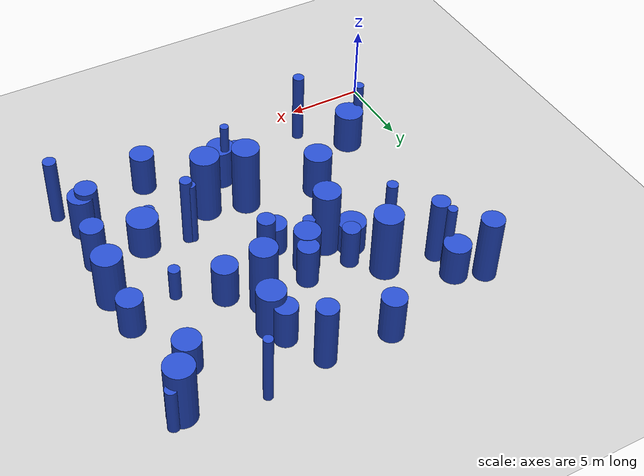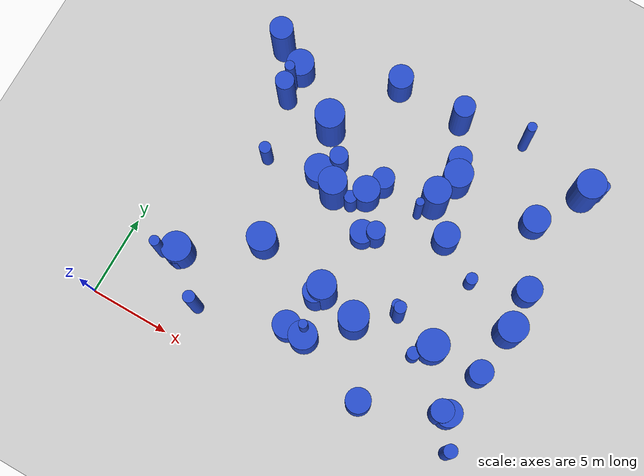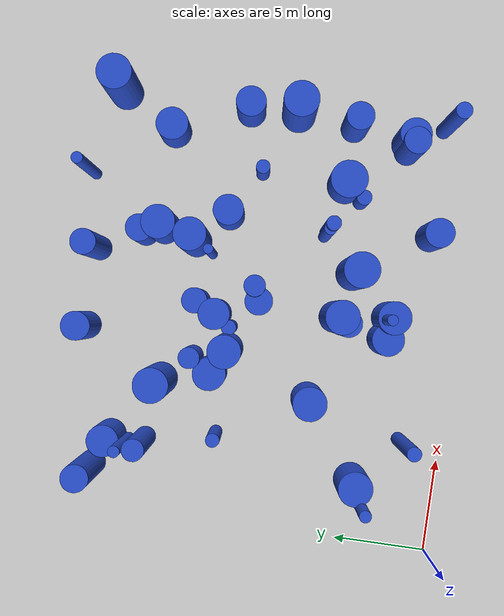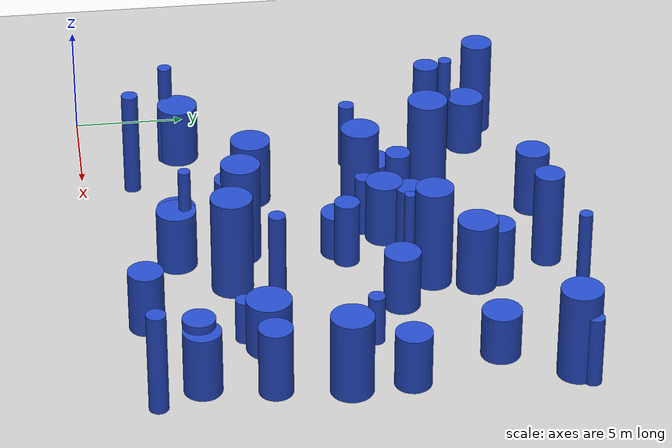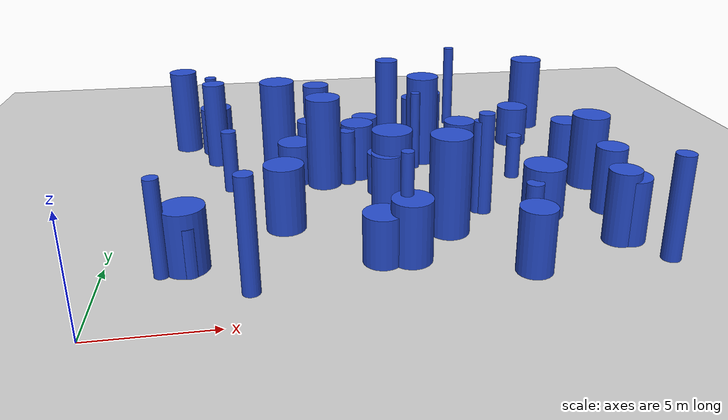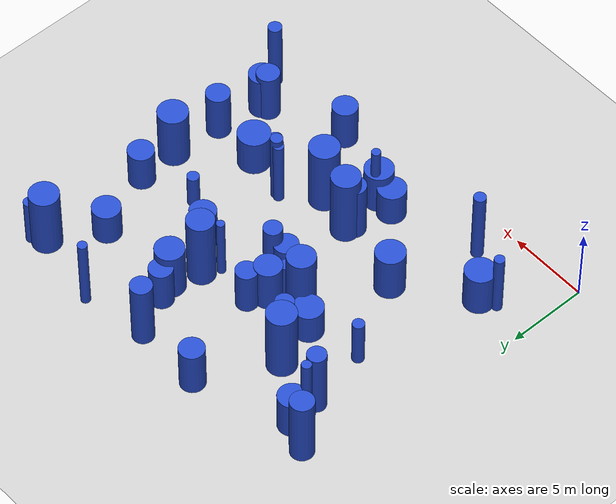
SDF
<sdf version="1.6">
 <world name="default">
  <model name="ground_plane">
   <static>1</static>
   <link name="link">
    <collision name="collision">
     <geometry><plane><normal>0 0 1</normal><size>100 100</size></plane></geometry>
     <surface><friction><ode><mu>100</mu><mu2>50</mu2></ode></friction></surface>
    </collision>
    <visual name="visual">
     <cast_shadows>0</cast_shadows>
     <geometry><plane><normal>0 0 1</normal><size>100 100</size></plane></geometry>
     <material>
      <script><uri>file://media/materials/scripts/gazebo.material</uri><name>Gazebo/Grey</name></script>
     </material>
    </visual>
   </link>
  </model>
  <model name="0">
   <static>0</static>
   <link name="link">
    <inertial>
     <mass>2</mass>
     <inertia><ixx>2.34982</ixx><ixy>0</ixy><ixz>0</ixz><iyy>2.34982</iyy><iyz>0</iyz><izz>0.175341</izz></inertia>
    </inertial>
    <collision name="collision">
     <geometry><cylinder><length>3.68414</length><radius>0.418737</radius></cylinder></geometry>
     <surface><contact><collide_without_contact>1</collide_without_contact></contact></surface>
    </collision>
    <visual name="visual">
     <geometry><cylinder><length>3.68414</length><radius>0.418737</radius></cylinder></geometry>
     <material>
      <script><uri>file://media/materials/scripts/gazebo.material</uri><name>Gazebo/Blue</name></script>
     </material>
    </visual>
    <gravity>0</gravity>
   </link>
   <pose>22.4212 20.0822 1.84207 0 -0 0</pose>
  </model>
  <model name="2">
   <static>0</static>
   <link name="link">
    <inertial>
     <mass>2</mass>
     <inertia><ixx>3.7496</ixx><ixy>0</ixy><ixz>0</ixz><iyy>3.7496</iyy><iyz>0</iyz><izz>0.179017</izz></inertia>
    </inertial>
    <collision name="collision">
     <geometry><cylinder><length>4.68621</length><radius>0.423104</radius></cylinder></geometry>
     <surface><contact><collide_without_contact>1</collide_without_contact></contact></surface>
    </collision>
    <visual name="visual">
     <geometry><cylinder><length>4.68621</length><radius>0.423104</radius></cylinder></geometry>
     <material>
      <script><uri>file://media/materials/scripts/gazebo.material</uri><name>Gazebo/Blue</name></script>
     </material>
    </visual>
    <gravity>0</gravity>
   </link>
   <pose>23.1867 2.18453 2.3431 0 -0 0</pose>
  </model>
  <model name="4">
   <static>0</static>
   <link name="link">
    <inertial>
     <mass>2</mass>
     <inertia>
      <ixx>0.784851</ixx>
      <ixy>0</ixy>
      <ixz>0</ixz>
      <iyy>0.784851</iyy>
      <iyz>0</iyz>
      <izz>0.196081</izz>
     </inertia>
    </inertial>
    <collision name="collision">
     <geometry><cylinder><length>2.02999</length><radius>0.442811</radius></cylinder></geometry>
     <surface><contact><collide_without_contact>1</collide_without_contact></contact></surface>
    </collision>
    <visual name="visual">
     <geometry><cylinder><length>2.02999</length><radius>0.442811</radius></cylinder></geometry>
     <material>
      <script><uri>file://media/materials/scripts/gazebo.material</uri><name>Gazebo/Blue</name></script>
     </material>
    </visual>
    <gravity>0</gravity>
   </link>
   <pose>22.4216 3.87466 1.015 0 -0 0</pose>
  </model>
  <model name="8">
   <static>0</static>
   <link name="link">
    <inertial>
     <mass>2</mass>
     <inertia>
      <ixx>0.936811</ixx>
      <ixy>0</ixy>
      <ixz>0</ixz>
      <iyy>0.936811</iyy>
      <iyz>0</iyz>
      <izz>0.138882</izz>
     </inertia>
    </inertial>
    <collision name="collision">
     <geometry><cylinder><length>2.28128</length><radius>0.372668</radius></cylinder></geometry>
     <surface><contact><collide_without_contact>1</collide_without_contact></contact></surface>
    </collision>
    <visual name="visual">
     <geometry><cylinder><length>2.28128</length><radius>0.372668</radius></cylinder></geometry>
     <material>
      <script><uri>file://media/materials/scripts/gazebo.material</uri><name>Gazebo/Blue</name></script>
     </material>
    </visual>
    <gravity>0</gravity>
   </link>
   <pose>19.4248 11.7611 1.14064 0 -0 0</pose>
  </model>
  <model name="9">
   <static>0</static>
   <link name="link">
    <inertial>
     <mass>2</mass>
     <inertia><ixx>1.77191</ixx><ixy>0</ixy><ixz>0</ixz><iyy>1.77191</iyy><iyz>0</iyz><izz>0.691914</izz></inertia>
    </inertial>
    <collision name="collision">
     <geometry><cylinder><length>2.92502</length><radius>0.831814</radius></cylinder></geometry>
     <surface><contact><collide_without_contact>1</collide_without_contact></contact></surface>
    </collision>
    <visual name="visual">
     <geometry><cylinder><length>2.92502</length><radius>0.831814</radius></cylinder></geometry>
     <material>
      <script><uri>file://media/materials/scripts/gazebo.material</uri><name>Gazebo/Blue</name></script>
     </material>
    </visual>
    <gravity>0</gravity>
   </link>
   <pose>11.3721 13.2 1.46251 0 -0 0</pose>
  </model>
  <model name="12">
   <static>0</static>
   <link name="link">
    <inertial>
     <mass>2</mass>
     <inertia>
      <ixx>3.57056</ixx>
      <ixy>0</ixy>
      <ixz>0</ixz>
      <iyy>3.57056</iyy>
      <iyz>0</iyz>
      <izz>0.0913782</izz>
     </inertia>
    </inertial>
    <collision name="collision">
     <geometry><cylinder><length>4.59883</length><radius>0.302288</radius></cylinder></geometry>
     <surface><contact><collide_without_contact>1</collide_without_contact></contact></surface>
    </collision>
    <visual name="visual">
     <geometry><cylinder><length>4.59883</length><radius>0.302288</radius></cylinder></geometry>
     <material>
      <script><uri>file://media/materials/scripts/gazebo.material</uri><name>Gazebo/Blue</name></script>
     </material>
    </visual>
    <gravity>0</gravity>
   </link>
   <pose>3.87306 17.0696 2.29941 0 -0 0</pose>
  </model>
  <model name="15">
   <static>0</static>
   <link name="link">
    <inertial>
     <mass>2</mass>
     <inertia><ixx>1.15166</ixx><ixy>0</ixy><ixz>0</ixz><iyy>1.15166</iyy><iyz>0</iyz><izz>0.803615</izz></inertia>
    </inertial>
    <collision name="collision">
     <geometry><cylinder><length>2.12111</length><radius>0.896446</radius></cylinder></geometry>
     <surface><contact><collide_without_contact>1</collide_without_contact></contact></surface>
    </collision>
    <visual name="visual">
     <geometry><cylinder><length>2.12111</length><radius>0.896446</radius></cylinder></geometry>
     <material>
      <script><uri>file://media/materials/scripts/gazebo.material</uri><name>Gazebo/Blue</name></script>
     </material>
    </visual>
    <gravity>0</gravity>
   </link>
   <pose>8.16995 13.0512 1.06056 0 -0 0</pose>
  </model>
  <model name="30">
   <static>0</static>
   <link name="link">
    <inertial>
     <mass>2</mass>
     <inertia><ixx>3.44762</ixx><ixy>0</ixy><ixz>0</ixz><iyy>3.44762</iyy><iyz>0</iyz><izz>0.103691</izz></inertia>
    </inertial>
    <collision name="collision">
     <geometry><cylinder><length>4.51383</length><radius>0.322011</radius></cylinder></geometry>
     <surface><contact><collide_without_contact>1</collide_without_contact></contact></surface>
    </collision>
    <visual name="visual">
     <geometry><cylinder><length>4.51383</length><radius>0.322011</radius></cylinder></geometry>
     <material>
      <script><uri>file://media/materials/scripts/gazebo.material</uri><name>Gazebo/Blue</name></script>
     </material>
    </visual>
    <gravity>0</gravity>
   </link>
   <pose>16.4467 7.91767 2.25692 0 -0 0</pose>
  </model>
  <model name="39">
   <static>0</static>
   <link name="link">
    <inertial>
     <mass>2</mass>
     <inertia><ixx>2.1303</ixx><ixy>0</ixy><ixz>0</ixz><iyy>2.1303</iyy><iyz>0</iyz><izz>0.504175</izz></inertia>
    </inertial>
    <collision name="collision">
     <geometry><cylinder><length>3.35697</length><radius>0.710052</radius></cylinder></geometry>
     <surface><contact><collide_without_contact>1</collide_without_contact></contact></surface>
    </collision>
    <visual name="visual">
     <geometry><cylinder><length>3.35697</length><radius>0.710052</radius></cylinder></geometry>
     <material>
      <script><uri>file://media/materials/scripts/gazebo.material</uri><name>Gazebo/Blue</name></script>
     </material>
    </visual>
    <gravity>0</gravity>
   </link>
   <pose>21.7132 4.03501 1.67849 0 -0 0</pose>
  </model>
  <model name="40">
   <static>0</static>
   <link name="link">
    <inertial>
     <mass>2</mass>
     <inertia><ixx>1.56214</ixx><ixy>0</ixy><ixz>0</ixz><iyy>1.56214</iyy><iyz>0</iyz><izz>0.523114</izz></inertia>
    </inertial>
    <collision name="collision">
     <geometry><cylinder><length>2.79347</length><radius>0.723266</radius></cylinder></geometry>
     <surface><contact><collide_without_contact>1</collide_without_contact></contact></surface>
    </collision>
    <visual name="visual">
     <geometry><cylinder><length>2.79347</length><radius>0.723266</radius></cylinder></geometry>
     <material>
      <script><uri>file://media/materials/scripts/gazebo.material</uri><name>Gazebo/Blue</name></script>
     </material>
    </visual>
    <gravity>0</gravity>
   </link>
   <pose>15.2742 17.7058 1.39674 0 -0 0</pose>
  </model>
  <model name="42">
   <static>0</static>
   <link name="link">
    <inertial>
     <mass>2</mass>
     <inertia><ixx>3.9345</ixx><ixy>0</ixy><ixz>0</ixz><iyy>3.9345</iyy><iyz>0</iyz><izz>0.817818</izz></inertia>
    </inertial>
    <collision name="collision">
     <geometry><cylinder><length>4.5993</length><radius>0.904333</radius></cylinder></geometry>
     <surface><contact><collide_without_contact>1</collide_without_contact></contact></surface>
    </collision>
    <visual name="visual">
     <geometry><cylinder><length>4.5993</length><radius>0.904333</radius></cylinder></geometry>
     <material>
      <script><uri>file://media/materials/scripts/gazebo.material</uri><name>Gazebo/Blue</name></script>
     </material>
    </visual>
    <gravity>0</gravity>
   </link>
   <pose>7.3963 15.7324 2.29965 0 -0 0</pose>
  </model>
  <model name="49">
   <static>0</static>
   <link name="link">
    <inertial>
     <mass>2</mass>
     <inertia><ixx>1.51586</ixx><ixy>0</ixy><ixz>0</ixz><iyy>1.51586</iyy><iyz>0</iyz><izz>0.321451</izz></inertia>
    </inertial>
    <collision name="collision">
     <geometry><cylinder><length>2.85146</length><radius>0.566967</radius></cylinder></geometry>
     <surface><contact><collide_without_contact>1</collide_without_contact></contact></surface>
    </collision>
    <visual name="visual">
     <geometry><cylinder><length>2.85146</length><radius>0.566967</radius></cylinder></geometry>
     <material>
      <script><uri>file://media/materials/scripts/gazebo.material</uri><name>Gazebo/Blue</name></script>
     </material>
    </visual>
    <gravity>0</gravity>
   </link>
   <pose>8.91157 14.1693 1.42573 0 -0 0</pose>
  </model>
  <model name="50">
   <static>0</static>
   <link name="link">
    <inertial>
     <mass>2</mass>
     <inertia><ixx>1.61339</ixx><ixy>0</ixy><ixz>0</ixz><iyy>1.61339</iyy><iyz>0</iyz><izz>0.452002</izz></inertia>
    </inertial>
    <collision name="collision">
     <geometry><cylinder><length>2.8852</length><radius>0.672311</radius></cylinder></geometry>
     <surface><contact><collide_without_contact>1</collide_without_contact></contact></surface>
    </collision>
    <visual name="visual">
     <geometry><cylinder><length>2.8852</length><radius>0.672311</radius></cylinder></geometry>
     <material>
      <script><uri>file://media/materials/scripts/gazebo.material</uri><name>Gazebo/Blue</name></script>
     </material>
    </visual>
    <gravity>0</gravity>
   </link>
   <pose>11.9244 14.3079 1.4426 0 -0 0</pose>
  </model>
  <model name="52">
   <static>0</static>
   <link name="link">
    <inertial>
     <mass>2</mass>
     <inertia><ixx>1.9861</ixx><ixy>0</ixy><ixz>0</ixz><iyy>1.9861</iyy><iyz>0</iyz><izz>0.542401</izz></inertia>
    </inertial>
    <collision name="collision">
     <geometry><cylinder><length>3.20771</length><radius>0.736479</radius></cylinder></geometry>
     <surface><contact><collide_without_contact>1</collide_without_contact></contact></surface>
    </collision>
    <visual name="visual">
     <geometry><cylinder><length>3.20771</length><radius>0.736479</radius></cylinder></geometry>
     <material>
      <script><uri>file://media/materials/scripts/gazebo.material</uri><name>Gazebo/Blue</name></script>
     </material>
    </visual>
    <gravity>0</gravity>
   </link>
   <pose>22.5768 7.11732 1.60386 0 -0 0</pose>
  </model>
  <model name="54">
   <static>0</static>
   <link name="link">
    <inertial>
     <mass>2</mass>
     <inertia>
      <ixx>0.855605</ixx>
      <ixy>0</ixy>
      <ixz>0</ixz>
      <iyy>0.855605</iyy>
      <iyz>0</iyz>
      <izz>0.167054</izz>
     </inertia>
    </inertial>
    <collision name="collision">
     <geometry><cylinder><length>2.15232</length><radius>0.408722</radius></cylinder></geometry>
     <surface><contact><collide_without_contact>1</collide_without_contact></contact></surface>
    </collision>
    <visual name="visual">
     <geometry><cylinder><length>2.15232</length><radius>0.408722</radius></cylinder></geometry>
     <material>
      <script><uri>file://media/materials/scripts/gazebo.material</uri><name>Gazebo/Blue</name></script>
     </material>
    </visual>
    <gravity>0</gravity>
   </link>
   <pose>3.50927 4.04848 1.07616 0 -0 0</pose>
  </model>
  <model name="55">
   <static>0</static>
   <link name="link">
    <inertial>
     <mass>2</mass>
     <inertia><ixx>4.19628</ixx><ixy>0</ixy><ixz>0</ixz><iyy>4.19628</iyy><iyz>0</iyz><izz>0.712394</izz></inertia>
    </inertial>
    <collision name="collision">
     <geometry><cylinder><length>4.80005</length><radius>0.844034</radius></cylinder></geometry>
     <surface><contact><collide_without_contact>1</collide_without_contact></contact></surface>
    </collision>
    <visual name="visual">
     <geometry><cylinder><length>4.80005</length><radius>0.844034</radius></cylinder></geometry>
     <material>
      <script><uri>file://media/materials/scripts/gazebo.material</uri><name>Gazebo/Blue</name></script>
     </material>
    </visual>
    <gravity>0</gravity>
   </link>
   <pose>15.1603 14.8496 2.40003 0 -0 0</pose>
  </model>
  <model name="56">
   <static>0</static>
   <link name="link">
    <inertial>
     <mass>2</mass>
     <inertia><ixx>3.96337</ixx><ixy>0</ixy><ixz>0</ixz><iyy>3.96337</iyy><iyz>0</iyz><izz>0.741021</izz></inertia>
    </inertial>
    <collision name="collision">
     <geometry><cylinder><length>4.64297</length><radius>0.860826</radius></cylinder></geometry>
     <surface><contact><collide_without_contact>1</collide_without_contact></contact></surface>
    </collision>
    <visual name="visual">
     <geometry><cylinder><length>4.64297</length><radius>0.860826</radius></cylinder></geometry>
     <material>
      <script><uri>file://media/materials/scripts/gazebo.material</uri><name>Gazebo/Blue</name></script>
     </material>
    </visual>
    <gravity>0</gravity>
   </link>
   <pose>9.58124 12.331 2.32149 0 -0 0</pose>
  </model>
  <model name="65">
   <static>0</static>
   <link name="link">
    <inertial>
     <mass>2</mass>
     <inertia><ixx>1.82034</ixx><ixy>0</ixy><ixz>0</ixz><iyy>1.82034</iyy><iyz>0</iyz><izz>0.128433</izz></inertia>
    </inertial>
    <collision name="collision">
     <geometry><cylinder><length>3.24603</length><radius>0.358375</radius></cylinder></geometry>
     <surface><contact><collide_without_contact>1</collide_without_contact></contact></surface>
    </collision>
    <visual name="visual">
     <geometry><cylinder><length>3.24603</length><radius>0.358375</radius></cylinder></geometry>
     <material>
      <script><uri>file://media/materials/scripts/gazebo.material</uri><name>Gazebo/Blue</name></script>
     </material>
    </visual>
    <gravity>0</gravity>
   </link>
   <pose>23.5079 20.3422 1.62302 0 -0 0</pose>
  </model>
  <model name="78">
   <static>0</static>
   <link name="link">
    <inertial>
     <mass>2</mass>
     <inertia><ixx>1.49884</ixx><ixy>0</ixy><ixz>0</ixz><iyy>1.49884</iyy><iyz>0</iyz><izz>0.718499</izz></inertia>
    </inertial>
    <collision name="collision">
     <geometry><cylinder><length>2.61487</length><radius>0.847643</radius></cylinder></geometry>
     <surface><contact><collide_without_contact>1</collide_without_contact></contact></surface>
    </collision>
    <visual name="visual">
     <geometry><cylinder><length>2.61487</length><radius>0.847643</radius></cylinder></geometry>
     <material>
      <script><uri>file://media/materials/scripts/gazebo.material</uri><name>Gazebo/Blue</name></script>
     </material>
    </visual>
    <gravity>0</gravity>
   </link>
   <pose>3.94613 18.0538 1.30744 0 -0 0</pose>
  </model>
  <model name="81">
   <static>0</static>
   <link name="link">
    <inertial>
     <mass>2</mass>
     <inertia><ixx>2.74723</ixx><ixy>0</ixy><ixz>0</ixz><iyy>2.74723</iyy><iyz>0</iyz><izz>0.869014</izz></inertia>
    </inertial>
    <collision name="collision">
     <geometry><cylinder><length>3.72509</length><radius>0.932209</radius></cylinder></geometry>
     <surface><contact><collide_without_contact>1</collide_without_contact></contact></surface>
    </collision>
    <visual name="visual">
     <geometry><cylinder><length>3.72509</length><radius>0.932209</radius></cylinder></geometry>
     <material>
      <script><uri>file://media/materials/scripts/gazebo.material</uri><name>Gazebo/Blue</name></script>
     </material>
    </visual>
    <gravity>0</gravity>
   </link>
   <pose>22.8803 10.2598 1.86255 0 -0 0</pose>
  </model>
  <model name="83">
   <static>0</static>
   <link name="link">
    <inertial>
     <mass>2</mass>
     <inertia><ixx>1.69403</ixx><ixy>0</ixy><ixz>0</ixz><iyy>1.69403</iyy><iyz>0</iyz><izz>0.134634</izz></inertia>
    </inertial>
    <collision name="collision">
     <geometry><cylinder><length>3.12414</length><radius>0.366925</radius></cylinder></geometry>
     <surface><contact><collide_without_contact>1</collide_without_contact></contact></surface>
    </collision>
    <visual name="visual">
     <geometry><cylinder><length>3.12414</length><radius>0.366925</radius></cylinder></geometry>
     <material>
      <script><uri>file://media/materials/scripts/gazebo.material</uri><name>Gazebo/Blue</name></script>
     </material>
    </visual>
    <gravity>0</gravity>
   </link>
   <pose>4.88645 12.3275 1.56207 0 -0 0</pose>
  </model>
  <model name="92">
   <static>0</static>
   <link name="link">
    <inertial>
     <mass>2</mass>
     <inertia><ixx>4.14606</ixx><ixy>0</ixy><ixz>0</ixz><iyy>4.14606</iyy><iyz>0</iyz><izz>0.139804</izz></inertia>
    </inertial>
    <collision name="collision">
     <geometry><cylinder><length>4.9454</length><radius>0.373904</radius></cylinder></geometry>
     <surface><contact><collide_without_contact>1</collide_without_contact></contact></surface>
    </collision>
    <visual name="visual">
     <geometry><cylinder><length>4.9454</length><radius>0.373904</radius></cylinder></geometry>
     <material>
      <script><uri>file://media/materials/scripts/gazebo.material</uri><name>Gazebo/Blue</name></script>
     </material>
    </visual>
    <gravity>0</gravity>
   </link>
   <pose>5.92605 2.27303 2.4727 0 -0 0</pose>
  </model>
  <model name="93">
   <static>0</static>
   <link name="link">
    <inertial>
     <mass>2</mass>
     <inertia><ixx>3.51306</ixx><ixy>0</ixy><ixz>0</ixz><iyy>3.51306</iyy><iyz>0</iyz><izz>0.438819</izz></inertia>
    </inertial>
    <collision name="collision">
     <geometry><cylinder><length>4.44544</length><radius>0.662434</radius></cylinder></geometry>
     <surface><contact><collide_without_contact>1</collide_without_contact></contact></surface>
    </collision>
    <visual name="visual">
     <geometry><cylinder><length>4.44544</length><radius>0.662434</radius></cylinder></geometry>
     <material>
      <script><uri>file://media/materials/scripts/gazebo.material</uri><name>Gazebo/Blue</name></script>
     </material>
    </visual>
    <gravity>0</gravity>
   </link>
   <pose>14.0495 20.1173 2.22272 0 -0 0</pose>
  </model>
  <model name="98">
   <static>0</static>
   <link name="link">
    <inertial>
     <mass>2</mass>
     <inertia><ixx>1.56863</ixx><ixy>0</ixy><ixz>0</ixz><iyy>1.56863</iyy><iyz>0</iyz><izz>0.659448</izz></inertia>
    </inertial>
    <collision name="collision">
     <geometry><cylinder><length>2.72643</length><radius>0.812064</radius></cylinder></geometry>
     <surface><contact><collide_without_contact>1</collide_without_contact></contact></surface>
    </collision>
    <visual name="visual">
     <geometry><cylinder><length>2.72643</length><radius>0.812064</radius></cylinder></geometry>
     <material>
      <script><uri>file://media/materials/scripts/gazebo.material</uri><name>Gazebo/Blue</name></script>
     </material>
    </visual>
    <gravity>0</gravity>
   </link>
   <pose>16.8643 13.2333 1.36321 0 -0 0</pose>
  </model>
  <model name="106">
   <static>0</static>
   <link name="link">
    <inertial>
     <mass>2</mass>
     <inertia><ixx>1.86812</ixx><ixy>0</ixy><ixz>0</ixz><iyy>1.86812</iyy><iyz>0</iyz><izz>0.587072</izz></inertia>
    </inertial>
    <collision name="collision">
     <geometry><cylinder><length>3.07368</length><radius>0.766206</radius></cylinder></geometry>
     <surface><contact><collide_without_contact>1</collide_without_contact></contact></surface>
    </collision>
    <visual name="visual">
     <geometry><cylinder><length>3.07368</length><radius>0.766206</radius></cylinder></geometry>
     <material>
      <script><uri>file://media/materials/scripts/gazebo.material</uri><name>Gazebo/Blue</name></script>
     </material>
    </visual>
    <gravity>0</gravity>
   </link>
   <pose>9.74168 20.2119 1.53684 0 -0 0</pose>
  </model>
  <model name="113">
   <static>0</static>
   <link name="link">
    <inertial>
     <mass>2</mass>
     <inertia>
      <ixx>0.757629</ixx>
      <ixy>0</ixy>
      <ixz>0</ixz>
      <iyy>0.757629</iyy>
      <iyz>0</iyz>
      <izz>0.168603</izz>
     </inertia>
    </inertial>
    <collision name="collision">
     <geometry><cylinder><length>2.00997</length><radius>0.410614</radius></cylinder></geometry>
     <surface><contact><collide_without_contact>1</collide_without_contact></contact></surface>
    </collision>
    <visual name="visual">
     <geometry><cylinder><length>2.00997</length><radius>0.410614</radius></cylinder></geometry>
     <material>
      <script><uri>file://media/materials/scripts/gazebo.material</uri><name>Gazebo/Blue</name></script>
     </material>
    </visual>
    <gravity>0</gravity>
   </link>
   <pose>18.6159 6.21219 1.00498 0 -0 0</pose>
  </model>
  <model name="116">
   <static>0</static>
   <link name="link">
    <inertial>
     <mass>2</mass>
     <inertia><ixx>1.82778</ixx><ixy>0</ixy><ixz>0</ixz><iyy>1.82778</iyy><iyz>0</iyz><izz>0.687072</izz></inertia>
    </inertial>
    <collision name="collision">
     <geometry><cylinder><length>2.9842</length><radius>0.828898</radius></cylinder></geometry>
     <surface><contact><collide_without_contact>1</collide_without_contact></contact></surface>
    </collision>
    <visual name="visual">
     <geometry><cylinder><length>2.9842</length><radius>0.828898</radius></cylinder></geometry>
     <material>
      <script><uri>file://media/materials/scripts/gazebo.material</uri><name>Gazebo/Blue</name></script>
     </material>
    </visual>
    <gravity>0</gravity>
   </link>
   <pose>22.1262 4.11813 1.4921 0 -0 0</pose>
  </model>
  <model name="129">
   <static>0</static>
   <link name="link">
    <inertial>
     <mass>2</mass>
     <inertia><ixx>1.71504</ixx><ixy>0</ixy><ixz>0</ixz><iyy>1.71504</iyy><iyz>0</iyz><izz>0.857109</izz></inertia>
    </inertial>
    <collision name="collision">
     <geometry><cylinder><length>2.7783</length><radius>0.925802</radius></cylinder></geometry>
     <surface><contact><collide_without_contact>1</collide_without_contact></contact></surface>
    </collision>
    <visual name="visual">
     <geometry><cylinder><length>2.7783</length><radius>0.925802</radius></cylinder></geometry>
     <material>
      <script><uri>file://media/materials/scripts/gazebo.material</uri><name>Gazebo/Blue</name></script>
     </material>
    </visual>
    <gravity>0</gravity>
   </link>
   <pose>3.35246 4.58719 1.38915 0 -0 0</pose>
  </model>
  <model name="135">
   <static>0</static>
   <link name="link">
    <inertial>
     <mass>2</mass>
     <inertia><ixx>1.19633</ixx><ixy>0</ixy><ixz>0</ixz><iyy>1.19633</iyy><iyz>0</iyz><izz>0.751827</izz></inertia>
    </inertial>
    <collision name="collision">
     <geometry><cylinder><length>2.21867</length><radius>0.867079</radius></cylinder></geometry>
     <surface><contact><collide_without_contact>1</collide_without_contact></contact></surface>
    </collision>
    <visual name="visual">
     <geometry><cylinder><length>2.21867</length><radius>0.867079</radius></cylinder></geometry>
     <material>
      <script><uri>file://media/materials/scripts/gazebo.material</uri><name>Gazebo/Blue</name></script>
     </material>
    </visual>
    <gravity>0</gravity>
   </link>
   <pose>11.3003 3.90964 1.10934 0 -0 0</pose>
  </model>
  <model name="137">
   <static>0</static>
   <link name="link">
    <inertial>
     <mass>2</mass>
     <inertia><ixx>3.97567</ixx><ixy>0</ixy><ixz>0</ixz><iyy>3.97567</iyy><iyz>0</iyz><izz>0.855594</izz></inertia>
    </inertial>
    <collision name="collision">
     <geometry><cylinder><length>4.61381</length><radius>0.924983</radius></cylinder></geometry>
     <surface><contact><collide_without_contact>1</collide_without_contact></contact></surface>
    </collision>
    <visual name="visual">
     <geometry><cylinder><length>4.61381</length><radius>0.924983</radius></cylinder></geometry>
     <material>
      <script><uri>file://media/materials/scripts/gazebo.material</uri><name>Gazebo/Blue</name></script>
     </material>
    </visual>
    <gravity>0</gravity>
   </link>
   <pose>14.6148 6.07332 2.3069 0 -0 0</pose>
  </model>
  <model name="145">
   <static>0</static>
   <link name="link">
    <inertial>
     <mass>2</mass>
     <inertia><ixx>3.38474</ixx><ixy>0</ixy><ixz>0</ixz><iyy>3.38474</iyy><iyz>0</iyz><izz>0.826733</izz></inertia>
    </inertial>
    <collision name="collision">
     <geometry><cylinder><length>4.22235</length><radius>0.909248</radius></cylinder></geometry>
     <surface><contact><collide_without_contact>1</collide_without_contact></contact></surface>
    </collision>
    <visual name="visual">
     <geometry><cylinder><length>4.22235</length><radius>0.909248</radius></cylinder></geometry>
     <material>
      <script><uri>file://media/materials/scripts/gazebo.material</uri><name>Gazebo/Blue</name></script>
     </material>
    </visual>
    <gravity>0</gravity>
   </link>
   <pose>22.763 19.844 2.11117 0 -0 0</pose>
  </model>
  <model name="147">
   <static>0</static>
   <link name="link">
    <inertial>
     <mass>2</mass>
     <inertia><ixx>2.23956</ixx><ixy>0</ixy><ixz>0</ixz><iyy>2.23956</iyy><iyz>0</iyz><izz>0.798507</izz></inertia>
    </inertial>
    <collision name="collision">
     <geometry><cylinder><length>3.32292</length><radius>0.893592</radius></cylinder></geometry>
     <surface><contact><collide_without_contact>1</collide_without_contact></contact></surface>
    </collision>
    <visual name="visual">
     <geometry><cylinder><length>3.32292</length><radius>0.893592</radius></cylinder></geometry>
     <material>
      <script><uri>file://media/materials/scripts/gazebo.material</uri><name>Gazebo/Blue</name></script>
     </material>
    </visual>
    <gravity>0</gravity>
   </link>
   <pose>15.6747 16.7073 1.66146 0 -0 0</pose>
  </model>
  <model name="156">
   <static>0</static>
   <link name="link">
    <inertial>
     <mass>2</mass>
     <inertia><ixx>1.19211</ixx><ixy>0</ixy><ixz>0</ixz><iyy>1.19211</iyy><iyz>0</iyz><izz>0.749006</izz></inertia>
    </inertial>
    <collision name="collision">
     <geometry><cylinder><length>2.21487</length><radius>0.865451</radius></cylinder></geometry>
     <surface><contact><collide_without_contact>1</collide_without_contact></contact></surface>
    </collision>
    <visual name="visual">
     <geometry><cylinder><length>2.21487</length><radius>0.865451</radius></cylinder></geometry>
     <material>
      <script><uri>file://media/materials/scripts/gazebo.material</uri><name>Gazebo/Blue</name></script>
     </material>
    </visual>
    <gravity>0</gravity>
   </link>
   <pose>21.0144 16.8537 1.10743 0 -0 0</pose>
  </model>
  <model name="165">
   <static>0</static>
   <link name="link">
    <inertial>
     <mass>2</mass>
     <inertia><ixx>1.52389</ixx><ixy>0</ixy><ixz>0</ixz><iyy>1.52389</iyy><iyz>0</iyz><izz>0.993919</izz></inertia>
    </inertial>
    <collision name="collision">
     <geometry><cylinder><length>2.48225</length><radius>0.996955</radius></cylinder></geometry>
     <surface><contact><collide_without_contact>1</collide_without_contact></contact></surface>
    </collision>
    <visual name="visual">
     <geometry><cylinder><length>2.48225</length><radius>0.996955</radius></cylinder></geometry>
     <material>
      <script><uri>file://media/materials/scripts/gazebo.material</uri><name>Gazebo/Blue</name></script>
     </material>
    </visual>
    <gravity>0</gravity>
   </link>
   <pose>19.3985 7.17138 1.24113 0 -0 0</pose>
  </model>
  <model name="167">
   <static>0</static>
   <link name="link">
    <inertial>
     <mass>2</mass>
     <inertia>
      <ixx>3.98124</ixx>
      <ixy>0</ixy>
      <ixz>0</ixz>
      <iyy>3.98124</iyy>
      <iyz>0</iyz>
      <izz>0.0870769</izz>
     </inertia>
    </inertial>
    <collision name="collision">
     <geometry><cylinder><length>4.86068</length><radius>0.295088</radius></cylinder></geometry>
     <surface><contact><collide_without_contact>1</collide_without_contact></contact></surface>
    </collision>
    <visual name="visual">
     <geometry><cylinder><length>4.86068</length><radius>0.295088</radius></cylinder></geometry>
     <material>
      <script><uri>file://media/materials/scripts/gazebo.material</uri><name>Gazebo/Blue</name></script>
     </material>
    </visual>
    <gravity>0</gravity>
   </link>
   <pose>18.097 20.9042 2.43034 0 -0 0</pose>
  </model>
  <model name="171">
   <static>0</static>
   <link name="link">
    <inertial>
     <mass>2</mass>
     <inertia><ixx>4.13126</ixx><ixy>0</ixy><ixz>0</ixz><iyy>4.13126</iyy><iyz>0</iyz><izz>0.77287</izz></inertia>
    </inertial>
    <collision name="collision">
     <geometry><cylinder><length>4.74014</length><radius>0.87913</radius></cylinder></geometry>
     <surface><contact><collide_without_contact>1</collide_without_contact></contact></surface>
    </collision>
    <visual name="visual">
     <geometry><cylinder><length>4.74014</length><radius>0.87913</radius></cylinder></geometry>
     <material>
      <script><uri>file://media/materials/scripts/gazebo.material</uri><name>Gazebo/Blue</name></script>
     </material>
    </visual>
    <gravity>0</gravity>
   </link>
   <pose>12.1266 6.70582 2.37007 0 -0 0</pose>
  </model>
  <model name="172">
   <static>0</static>
   <link name="link">
    <inertial>
     <mass>2</mass>
     <inertia><ixx>3.68279</ixx><ixy>0</ixy><ixz>0</ixz><iyy>3.68279</iyy><iyz>0</iyz><izz>0.512461</izz></inertia>
    </inertial>
    <collision name="collision">
     <geometry><cylinder><length>4.53424</length><radius>0.715864</radius></cylinder></geometry>
     <surface><contact><collide_without_contact>1</collide_without_contact></contact></surface>
    </collision>
    <visual name="visual">
     <geometry><cylinder><length>4.53424</length><radius>0.715864</radius></cylinder></geometry>
     <material>
      <script><uri>file://media/materials/scripts/gazebo.material</uri><name>Gazebo/Blue</name></script>
     </material>
    </visual>
    <gravity>0</gravity>
   </link>
   <pose>2.25294 18.8386 2.26712 0 -0 0</pose>
  </model>
  <model name="177">
   <static>0</static>
   <link name="link">
    <inertial>
     <mass>2</mass>
     <inertia><ixx>1.69614</ixx><ixy>0</ixy><ixz>0</ixz><iyy>1.69614</iyy><iyz>0</iyz><izz>0.787847</izz></inertia>
    </inertial>
    <collision name="collision">
     <geometry><cylinder><length>2.79523</length><radius>0.887607</radius></cylinder></geometry>
     <surface><contact><collide_without_contact>1</collide_without_contact></contact></surface>
    </collision>
    <visual name="visual">
     <geometry><cylinder><length>2.79523</length><radius>0.887607</radius></cylinder></geometry>
     <material>
      <script><uri>file://media/materials/scripts/gazebo.material</uri><name>Gazebo/Blue</name></script>
     </material>
    </visual>
    <gravity>0</gravity>
   </link>
   <pose>12.4885 3.81219 1.39762 0 -0 0</pose>
  </model>
  <model name="178">
   <static>0</static>
   <link name="link">
    <inertial>
     <mass>2</mass>
     <inertia><ixx>1.41536</ixx><ixy>0</ixy><ixz>0</ixz><iyy>1.41536</iyy><iyz>0</iyz><izz>0.157154</izz></inertia>
    </inertial>
    <collision name="collision">
     <geometry><cylinder><length>2.83208</length><radius>0.396426</radius></cylinder></geometry>
     <surface><contact><collide_without_contact>1</collide_without_contact></contact></surface>
    </collision>
    <visual name="visual">
     <geometry><cylinder><length>2.83208</length><radius>0.396426</radius></cylinder></geometry>
     <material>
      <script><uri>file://media/materials/scripts/gazebo.material</uri><name>Gazebo/Blue</name></script>
     </material>
    </visual>
    <gravity>0</gravity>
   </link>
   <pose>10.7741 12.3415 1.41604 0 -0 0</pose>
  </model>
  <model name="188">
   <static>0</static>
   <link name="link">
    <inertial>
     <mass>2</mass>
     <inertia><ixx>3.07218</ixx><ixy>0</ixy><ixz>0</ixz><iyy>3.07218</iyy><iyz>0</iyz><izz>0.1</izz></inertia>
    </inertial>
    <collision name="collision">
     <geometry><cylinder><length>4.25829</length><radius>0.316228</radius></cylinder></geometry>
     <surface><contact><collide_without_contact>1</collide_without_contact></contact></surface>
    </collision>
    <visual name="visual">
     <geometry><cylinder><length>4.25829</length><radius>0.316228</radius></cylinder></geometry>
     <material>
      <script><uri>file://media/materials/scripts/gazebo.material</uri><name>Gazebo/Blue</name></script>
     </material>
    </visual>
    <gravity>0</gravity>
   </link>
   <pose>2.37631 4.11587 2.12915 0 -0 0</pose>
  </model>
  <model name="195">
   <static>0</static>
   <link name="link">
    <inertial>
     <mass>2</mass>
     <inertia><ixx>2.00888</ixx><ixy>0</ixy><ixz>0</ixz><iyy>2.00888</iyy><iyz>0</iyz><izz>0.820959</izz></inertia>
    </inertial>
    <collision name="collision">
     <geometry><cylinder><length>3.09684</length><radius>0.906068</radius></cylinder></geometry>
     <surface><contact><collide_without_contact>1</collide_without_contact></contact></surface>
    </collision>
    <visual name="visual">
     <geometry><cylinder><length>3.09684</length><radius>0.906068</radius></cylinder></geometry>
     <material>
      <script><uri>file://media/materials/scripts/gazebo.material</uri><name>Gazebo/Blue</name></script>
     </material>
    </visual>
    <gravity>0</gravity>
   </link>
   <pose>7.4454 7.59452 1.54842 0 -0 0</pose>
  </model>
  <model name="196">
   <static>0</static>
   <link name="link">
    <inertial>
     <mass>2</mass>
     <inertia><ixx>4.0546</ixx><ixy>0</ixy><ixz>0</ixz><iyy>4.0546</iyy><iyz>0</iyz><izz>0.14116</izz></inertia>
    </inertial>
    <collision name="collision">
     <geometry><cylinder><length>4.88919</length><radius>0.375713</radius></cylinder></geometry>
     <surface><contact><collide_without_contact>1</collide_without_contact></contact></surface>
    </collision>
    <visual name="visual">
     <geometry><cylinder><length>4.88919</length><radius>0.375713</radius></cylinder></geometry>
     <material>
      <script><uri>file://media/materials/scripts/gazebo.material</uri><name>Gazebo/Blue</name></script>
     </material>
    </visual>
    <gravity>0</gravity>
   </link>
   <pose>16.6931 7.82171 2.44459 0 -0 0</pose>
  </model>
  <model name="197">
   <static>0</static>
   <link name="link">
    <inertial>
     <mass>2</mass>
     <inertia>
      <ixx>2.94893</ixx>
      <ixy>0</ixy>
      <ixz>0</ixz>
      <iyy>2.94893</iyy>
      <iyz>0</iyz>
      <izz>0.0649626</izz>
     </inertia>
    </inertial>
    <collision name="collision">
     <geometry><cylinder><length>4.18315</length><radius>0.254878</radius></cylinder></geometry>
     <surface><contact><collide_without_contact>1</collide_without_contact></contact></surface>
    </collision>
    <visual name="visual">
     <geometry><cylinder><length>4.18315</length><radius>0.254878</radius></cylinder></geometry>
     <material>
      <script><uri>file://media/materials/scripts/gazebo.material</uri><name>Gazebo/Blue</name></script>
     </material>
    </visual>
    <gravity>0</gravity>
   </link>
   <pose>14.5908 13.8722 2.09157 0 -0 0</pose>
  </model>
  <model name="205">
   <static>0</static>
   <link name="link">
    <inertial>
     <mass>2</mass>
     <inertia>
      <ixx>3.70464</ixx>
      <ixy>0</ixy>
      <ixz>0</ixz>
      <iyy>3.70464</iyy>
      <iyz>0</iyz>
      <izz>0.0765261</izz>
     </inertia>
    </inertial>
    <collision name="collision">
     <geometry><cylinder><length>4.69023</length><radius>0.276634</radius></cylinder></geometry>
     <surface><contact><collide_without_contact>1</collide_without_contact></contact></surface>
    </collision>
    <visual name="visual">
     <geometry><cylinder><length>4.69023</length><radius>0.276634</radius></cylinder></geometry>
     <material>
      <script><uri>file://media/materials/scripts/gazebo.material</uri><name>Gazebo/Blue</name></script>
     </material>
    </visual>
    <gravity>0</gravity>
   </link>
   <pose>12.3437 4.21975 2.34511 0 -0 0</pose>
  </model>
  <model name="206">
   <static>0</static>
   <link name="link">
    <inertial>
     <mass>2</mass>
     <inertia><ixx>1.4202</ixx><ixy>0</ixy><ixz>0</ixz><iyy>1.4202</iyy><iyz>0</iyz><izz>0.643957</izz></inertia>
    </inertial>
    <collision name="collision">
     <geometry><cylinder><length>2.56697</length><radius>0.802469</radius></cylinder></geometry>
     <surface><contact><collide_without_contact>1</collide_without_contact></contact></surface>
    </collision>
    <visual name="visual">
     <geometry><cylinder><length>2.56697</length><radius>0.802469</radius></cylinder></geometry>
     <material>
      <script><uri>file://media/materials/scripts/gazebo.material</uri><name>Gazebo/Blue</name></script>
     </material>
    </visual>
    <gravity>0</gravity>
   </link>
   <pose>22.6809 12.8611 1.28349 0 -0 0</pose>
  </model>
  <model name="211">
   <static>0</static>
   <link name="link">
    <inertial>
     <mass>2</mass>
     <inertia><ixx>1.6601</ixx><ixy>0</ixy><ixz>0</ixz><iyy>1.6601</iyy><iyz>0</iyz><izz>0.609505</izz></inertia>
    </inertial>
    <collision name="collision">
     <geometry><cylinder><length>2.85168</length><radius>0.780708</radius></cylinder></geometry>
     <surface><contact><collide_without_contact>1</collide_without_contact></contact></surface>
    </collision>
    <visual name="visual">
     <geometry><cylinder><length>2.85168</length><radius>0.780708</radius></cylinder></geometry>
     <material>
      <script><uri>file://media/materials/scripts/gazebo.material</uri><name>Gazebo/Blue</name></script>
     </material>
    </visual>
    <gravity>0</gravity>
   </link>
   <pose>17.2131 2.13057 1.42584 0 -0 0</pose>
  </model>
  <model name="219">
   <static>0</static>
   <link name="link">
    <inertial>
     <mass>2</mass>
     <inertia><ixx>2.71545</ixx><ixy>0</ixy><ixz>0</ixz><iyy>2.71545</iyy><iyz>0</iyz><izz>0.491469</izz></inertia>
    </inertial>
    <collision name="collision">
     <geometry><cylinder><length>3.84945</length><radius>0.701049</radius></cylinder></geometry>
     <surface><contact><collide_without_contact>1</collide_without_contact></contact></surface>
    </collision>
    <visual name="visual">
     <geometry><cylinder><length>3.84945</length><radius>0.701049</radius></cylinder></geometry>
     <material>
      <script><uri>file://media/materials/scripts/gazebo.material</uri><name>Gazebo/Blue</name></script>
     </material>
    </visual>
    <gravity>0</gravity>
   </link>
   <pose>11.8594 6.2673 1.92473 0 -0 0</pose>
  </model>
  <model name="221">
   <static>0</static>
   <link name="link">
    <inertial>
     <mass>2</mass>
     <inertia><ixx>1.71833</ixx><ixy>0</ixy><ixz>0</ixz><iyy>1.71833</iyy><iyz>0</iyz><izz>0.326372</izz></inertia>
    </inertial>
    <collision name="collision">
     <geometry><cylinder><length>3.05464</length><radius>0.57129</radius></cylinder></geometry>
     <surface><contact><collide_without_contact>1</collide_without_contact></contact></surface>
    </collision>
    <visual name="visual">
     <geometry><cylinder><length>3.05464</length><radius>0.57129</radius></cylinder></geometry>
     <material>
      <script><uri>file://media/materials/scripts/gazebo.material</uri><name>Gazebo/Blue</name></script>
     </material>
    </visual>
    <gravity>0</gravity>
   </link>
   <pose>13.1178 11.3008 1.52732 0 -0 0</pose>
  </model>
  <model name="239">
   <static>0</static>
   <link name="link">
    <inertial>
     <mass>2</mass>
     <inertia><ixx>3.57144</ixx><ixy>0</ixy><ixz>0</ixz><iyy>3.57144</iyy><iyz>0</iyz><izz>0.331608</izz></inertia>
    </inertial>
    <collision name="collision">
     <geometry><cylinder><length>4.52038</length><radius>0.575854</radius></cylinder></geometry>
     <surface><contact><collide_without_contact>1</collide_without_contact></contact></surface>
    </collision>
    <visual name="visual">
     <geometry><cylinder><length>4.52038</length><radius>0.575854</radius></cylinder></geometry>
     <material>
      <script><uri>file://media/materials/scripts/gazebo.material</uri><name>Gazebo/Blue</name></script>
     </material>
    </visual>
    <gravity>0</gravity>
   </link>
   <pose>4.06341 16.1518 2.26019 0 -0 0</pose>
  </model>
  <model name="243">
   <static>0</static>
   <link name="link">
    <inertial>
     <mass>2</mass>
     <inertia><ixx>1.00337</ixx><ixy>0</ixy><ixz>0</ixz><iyy>1.00337</iyy><iyz>0</iyz><izz>0.563019</izz></inertia>
    </inertial>
    <collision name="collision">
     <geometry><cylinder><length>2.08114</length><radius>0.750346</radius></cylinder></geometry>
     <surface><contact><collide_without_contact>1</collide_without_contact></contact></surface>
    </collision>
    <visual name="visual">
     <geometry><cylinder><length>2.08114</length><radius>0.750346</radius></cylinder></geometry>
     <material>
      <script><uri>file://media/materials/scripts/gazebo.material</uri><name>Gazebo/Blue</name></script>
     </material>
    </visual>
    <gravity>0</gravity>
   </link>
   <pose>12.3611 10.9827 1.04057 0 -0 0</pose>
  </model>
 </world>
</sdf>
